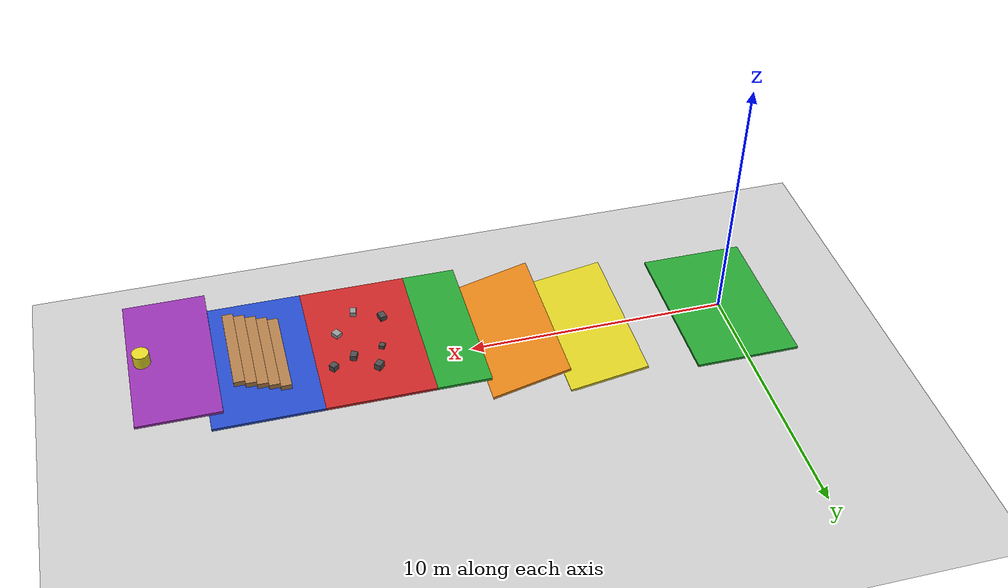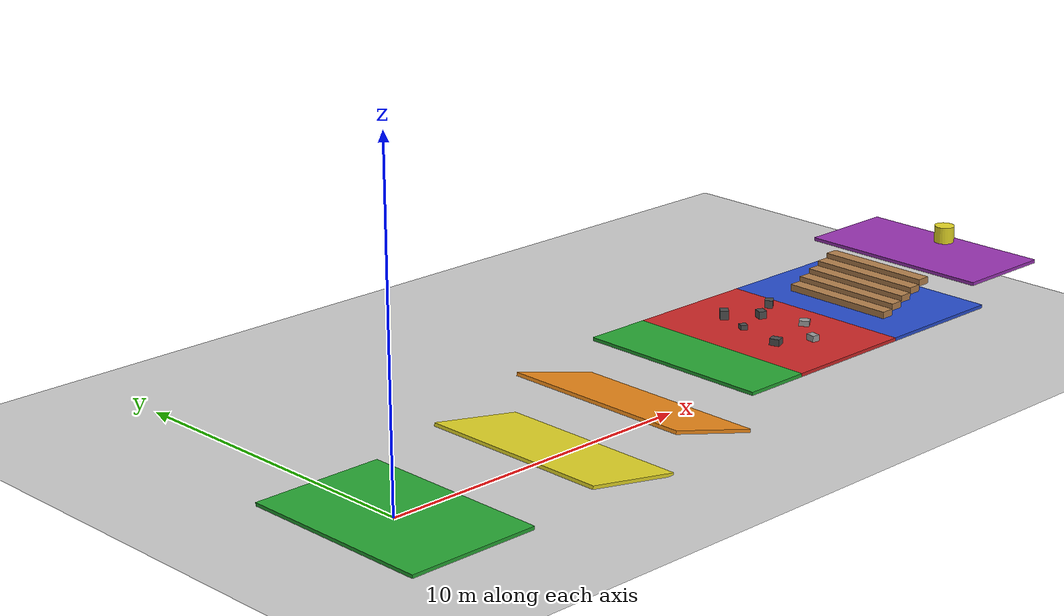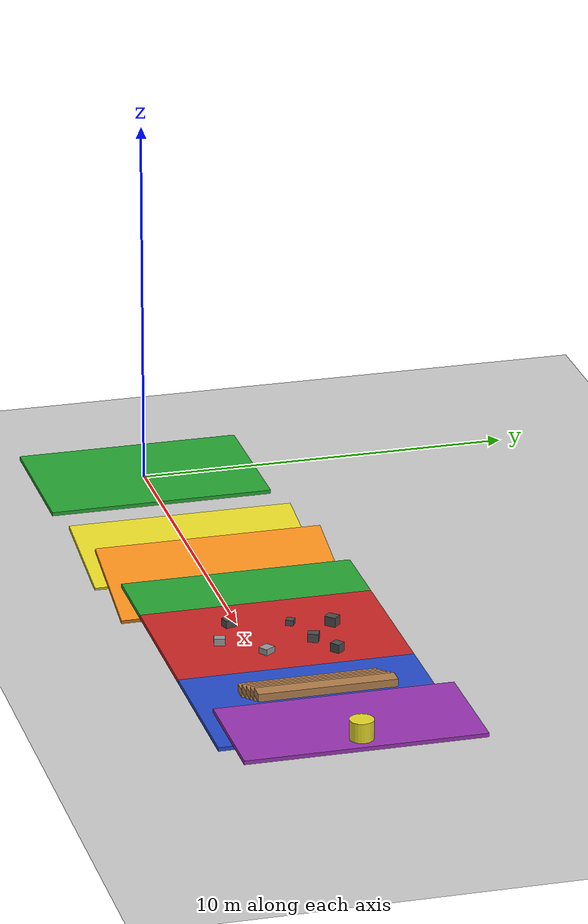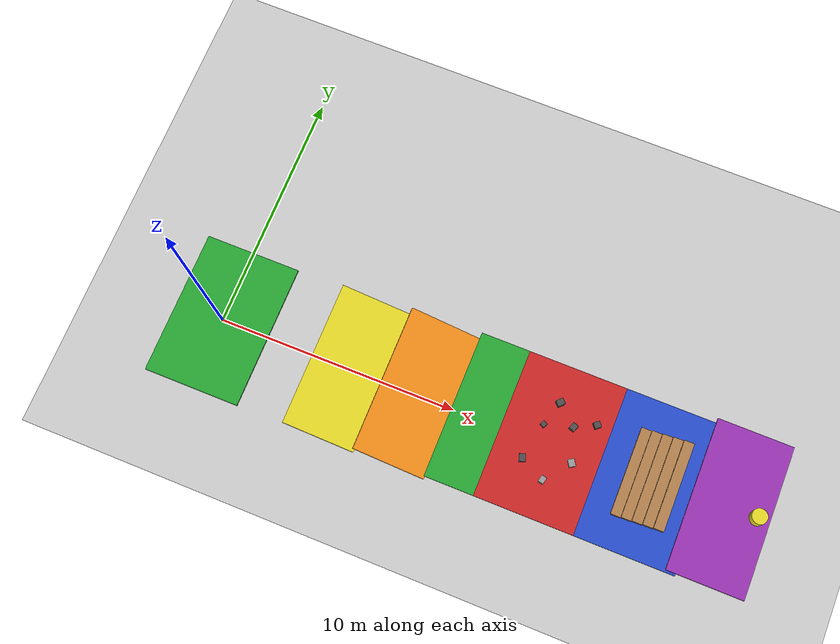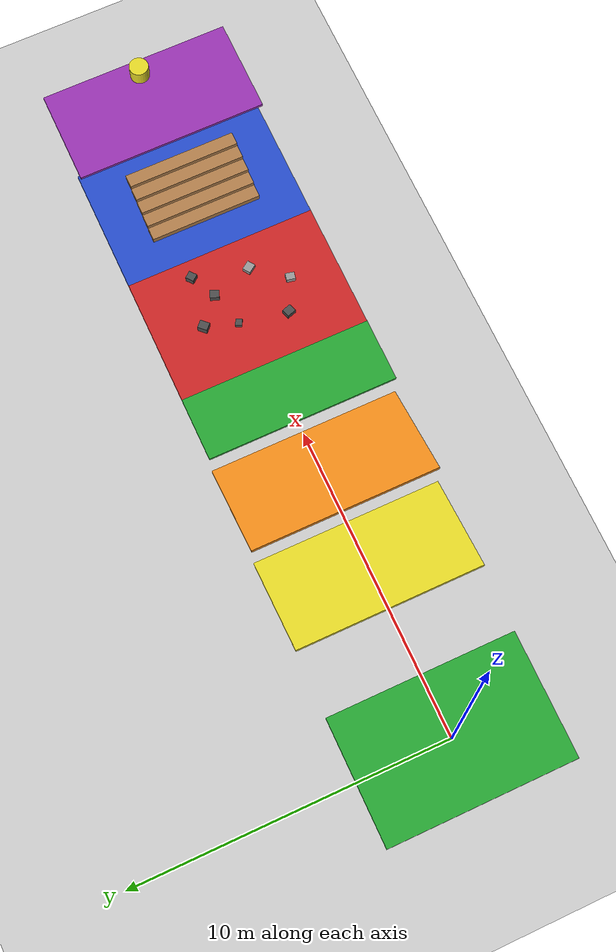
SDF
<?xml version="1.0"?>
<sdf version="1.6">
  <world name="comprehensive_terrain_world">

    <!-- Physics settings for realistic simulation -->
    <physics type="ode">
      <max_step_size>0.001</max_step_size>
      <real_time_factor>1.0</real_time_factor>
      <real_time_update_rate>1000</real_time_update_rate>
      <gravity>0 0 -9.81</gravity>
      <ode>
        <solver>
          <type>quick</type>
          <iters>50</iters>
          <sor>1.3</sor>
        </solver>
        <constraints>
          <cfm>0.0</cfm>
          <erp>0.2</erp>
          <contact_max_correcting_vel>100.0</contact_max_correcting_vel>
          <contact_surface_layer>0.001</contact_surface_layer>
        </constraints>
      </ode>
    </physics>

    <!-- Scene settings -->
    <scene>
      <ambient>0.5 0.5 0.5 1.0</ambient>
      <background>0.5 0.7 0.9 1.0</background>
      <shadows>true</shadows>
    </scene>

    <!-- Sun -->
    <include>
      <uri>model://sun</uri>
    </include>

    <!-- Additional lighting for better visibility -->
    <light name='user_point_light_0' type='point'>
      <pose>5 5 10 0 0 0</pose>
      <diffuse>0.8 0.8 0.8 1</diffuse>
      <specular>0.2 0.2 0.2 1</specular>
      <attenuation>
        <range>50</range>
        <constant>0.5</constant>
        <linear>0.01</linear>
        <quadratic>0.001</quadratic>
      </attenuation>
      <cast_shadows>false</cast_shadows>
    </light>

    <!-- Ground plane (base) -->
    <model name="ground_plane">
      <static>true</static>
      <link name="link">
        <collision name="collision">
          <geometry>
            <plane>
              <normal>0 0 1</normal>
              <size>100 100</size>
            </plane>
          </geometry>
          <surface>
            <friction>
              <ode>
                <mu>0.8</mu>
                <mu2>0.8</mu2>
              </ode>
            </friction>
          </surface>
        </collision>
        <visual name="visual">
          <geometry>
            <plane>
              <normal>0 0 1</normal>
              <size>100 100</size>
            </plane>
          </geometry>
          <material>
            <script>
              <uri>file://media/materials/scripts/gazebo.material</uri>
              <name>Gazebo/Grey</name>
            </script>
          </material>
        </visual>
      </link>
    </model>

    <!-- ==================== SECTION 1: FLAT TERRAIN (Starting Zone) ==================== -->
    <model name="flat_start_platform">
      <static>true</static>
      <pose>0 0 0.05 0 0 0</pose>
      <link name="link">
        <collision name="collision">
          <geometry>
            <box>
              <size>4 6 0.1</size>
            </box>
          </geometry>
          <surface>
            <friction>
              <ode>
                <mu>1.0</mu>
                <mu2>1.0</mu2>
              </ode>
            </friction>
          </surface>
        </collision>
        <visual name="visual">
          <geometry>
            <box>
              <size>4 6 0.1</size>
            </box>
          </geometry>
          <material>
            <script>
              <uri>file://media/materials/scripts/gazebo.material</uri>
              <name>Gazebo/Green</name>
            </script>
          </material>
        </visual>
      </link>
    </model>

    <!-- ==================== SECTION 2: GENTLE SLOPE (5-10 degrees) ==================== -->
    <model name="gentle_slope">
      <static>true</static>
      <pose>5.5 0 0.25 0 0.175 0</pose> <!-- 10 degree slope -->
      <link name="link">
        <collision name="collision">
          <geometry>
            <box>
              <size>3 6 0.1</size>
            </box>
          </geometry>
          <surface>
            <friction>
              <ode>
                <mu>1.0</mu>
                <mu2>1.0</mu2>
              </ode>
            </friction>
          </surface>
        </collision>
        <visual name="visual">
          <geometry>
            <box>
              <size>3 6 0.1</size>
            </box>
          </geometry>
          <material>
            <script>
              <uri>file://media/materials/scripts/gazebo.material</uri>
              <name>Gazebo/DarkYellow</name>
            </script>
          </material>
        </visual>
      </link>
    </model>

    <!-- ==================== SECTION 3: MODERATE SLOPE (15 degrees) ==================== -->
    <model name="moderate_slope">
      <static>true</static>
      <pose>8.5 0 0.75 0 0.262 0</pose> <!-- 15 degree slope -->
      <link name="link">
        <collision name="collision">
          <geometry>
            <box>
              <size>3 6 0.1</size>
            </box>
          </geometry>
          <surface>
            <friction>
              <ode>
                <mu>1.0</mu>
                <mu2>1.0</mu2>
              </ode>
            </friction>
          </surface>
        </collision>
        <visual name="visual">
          <geometry>
            <box>
              <size>3 6 0.1</size>
            </box>
          </geometry>
          <material>
            <script>
              <uri>file://media/materials/scripts/gazebo.material</uri>
              <name>Gazebo/Orange</name>
            </script>
          </material>
        </visual>
      </link>
    </model>

    <!-- Transition platform after slopes -->
    <model name="platform_after_slopes">
      <static>true</static>
      <pose>11 0 1.4 0 0 0</pose>
      <link name="link">
        <collision name="collision">
          <geometry>
            <box>
              <size>2 6 0.1</size>
            </box>
          </geometry>
          <surface>
            <friction>
              <ode>
                <mu>1.0</mu>
                <mu2>1.0</mu2>
              </ode>
            </friction>
          </surface>
        </collision>
        <visual name="visual">
          <geometry>
            <box>
              <size>2 6 0.1</size>
            </box>
          </geometry>
          <material>
            <script>
              <uri>file://media/materials/scripts/gazebo.material</uri>
              <name>Gazebo/Green</name>
            </script>
          </material>
        </visual>
      </link>
    </model>

    <!-- ==================== SECTION 4: RUBBLE TERRAIN (Uneven surfaces) ==================== -->
    <model name="rubble_base">
      <static>true</static>
      <pose>14 0 1.4 0 0 0</pose>
      <link name="link">
        <collision name="collision">
          <geometry>
            <box>
              <size>4 6 0.1</size>
            </box>
          </geometry>
          <surface>
            <friction>
              <ode>
                <mu>0.9</mu>
                <mu2>0.9</mu2>
              </ode>
            </friction>
          </surface>
        </collision>
        <visual name="visual">
          <geometry>
            <box>
              <size>4 6 0.1</size>
            </box>
          </geometry>
          <material>
            <script>
              <uri>file://media/materials/scripts/gazebo.material</uri>
              <name>Gazebo/Red</name>
            </script>
          </material>
        </visual>
      </link>
    </model>

    <!-- Rubble obstacles - varied sizes and positions -->
    <model name="rubble_rock_1">
      <static>true</static>
      <pose>13.2 -1.0 1.55 0 0 0.3</pose>
      <link name="link">
        <collision name="collision">
          <geometry>
            <box>
              <size>0.25 0.3 0.2</size>
            </box>
          </geometry>
        </collision>
        <visual name="visual">
          <geometry>
            <box>
              <size>0.25 0.3 0.2</size>
            </box>
          </geometry>
          <material>
            <script>
              <uri>file://media/materials/scripts/gazebo.material</uri>
              <name>Gazebo/DarkGrey</name>
            </script>
          </material>
        </visual>
      </link>
    </model>

    <model name="rubble_rock_2">
      <static>true</static>
      <pose>13.5 0.5 1.52 0 0 -0.5</pose>
      <link name="link">
        <collision name="collision">
          <geometry>
            <box>
              <size>0.2 0.2 0.15</size>
            </box>
          </geometry>
        </collision>
        <visual name="visual">
          <geometry>
            <box>
              <size>0.2 0.2 0.15</size>
            </box>
          </geometry>
          <material>
            <script>
              <uri>file://media/materials/scripts/gazebo.material</uri>
              <name>Gazebo/DarkGrey</name>
            </script>
          </material>
        </visual>
      </link>
    </model>

    <model name="rubble_rock_3">
      <static>true</static>
      <pose>13.8 1.5 1.58 0 0 0.8</pose>
      <link name="link">
        <collision name="collision">
          <geometry>
            <box>
              <size>0.3 0.25 0.25</size>
            </box>
          </geometry>
        </collision>
        <visual name="visual">
          <geometry>
            <box>
              <size>0.3 0.25 0.25</size>
            </box>
          </geometry>
          <material>
            <script>
              <uri>file://media/materials/scripts/gazebo.material</uri>
              <name>Gazebo/DarkGrey</name>
            </script>
          </material>
        </visual>
      </link>
    </model>

    <model name="rubble_rock_4">
      <static>true</static>
      <pose>14.2 -1.5 1.54 0 0 -0.2</pose>
      <link name="link">
        <collision name="collision">
          <geometry>
            <box>
              <size>0.22 0.28 0.18</size>
            </box>
          </geometry>
        </collision>
        <visual name="visual">
          <geometry>
            <box>
              <size>0.22 0.28 0.18</size>
            </box>
          </geometry>
          <material>
            <script>
              <uri>file://media/materials/scripts/gazebo.material</uri>
              <name>Gazebo/Grey</name>
            </script>
          </material>
        </visual>
      </link>
    </model>

    <model name="rubble_rock_5">
      <static>true</static>
      <pose>14.6 0.8 1.56 0 0 1.2</pose>
      <link name="link">
        <collision name="collision">
          <geometry>
            <box>
              <size>0.28 0.24 0.22</size>
            </box>
          </geometry>
        </collision>
        <visual name="visual">
          <geometry>
            <box>
              <size>0.28 0.24 0.22</size>
            </box>
          </geometry>
          <material>
            <script>
              <uri>file://media/materials/scripts/gazebo.material</uri>
              <name>Gazebo/DarkGrey</name>
            </script>
          </material>
        </visual>
      </link>
    </model>

    <model name="rubble_rock_6">
      <static>true</static>
      <pose>15.0 -0.5 1.53 0 0 0.6</pose>
      <link name="link">
        <collision name="collision">
          <geometry>
            <box>
              <size>0.26 0.3 0.16</size>
            </box>
          </geometry>
        </collision>
        <visual name="visual">
          <geometry>
            <box>
              <size>0.26 0.3 0.16</size>
            </box>
          </geometry>
          <material>
            <script>
              <uri>file://media/materials/scripts/gazebo.material</uri>
              <name>Gazebo/Grey</name>
            </script>
          </material>
        </visual>
      </link>
    </model>

    <model name="rubble_rock_7">
      <static>true</static>
      <pose>15.4 1.2 1.59 0 0 -0.9</pose>
      <link name="link">
        <collision name="collision">
          <geometry>
            <box>
              <size>0.24 0.26 0.23</size>
            </box>
          </geometry>
        </collision>
        <visual name="visual">
          <geometry>
            <box>
              <size>0.24 0.26 0.23</size>
            </box>
          </geometry>
          <material>
            <script>
              <uri>file://media/materials/scripts/gazebo.material</uri>
              <name>Gazebo/DarkGrey</name>
            </script>
          </material>
        </visual>
      </link>
    </model>

    <!-- ==================== SECTION 5: STAIRS (Step climbing) ==================== -->
    <model name="stairs_base">
      <static>true</static>
      <pose>18 0 1.4 0 0 0</pose>
      <link name="link">
        <collision name="collision">
          <geometry>
            <box>
              <size>4 6 0.1</size>
            </box>
          </geometry>
          <surface>
            <friction>
              <ode>
                <mu>1.2</mu>
                <mu2>1.2</mu2>
              </ode>
            </friction>
          </surface>
        </collision>
        <visual name="visual">
          <geometry>
            <box>
              <size>4 6 0.1</size>
            </box>
          </geometry>
          <material>
            <script>
              <uri>file://media/materials/scripts/gazebo.material</uri>
              <name>Gazebo/Blue</name>
            </script>
          </material>
        </visual>
      </link>
    </model>

    <!-- Stair steps -->
    <model name="stair_step_1">
      <static>true</static>
      <pose>17.2 0 1.55 0 0 0</pose>
      <link name="link">
        <collision name="collision">
          <geometry>
            <box>
              <size>0.4 3.5 0.2</size>
            </box>
          </geometry>
          <surface>
            <friction>
              <ode>
                <mu>1.2</mu>
                <mu2>1.2</mu2>
              </ode>
            </friction>
          </surface>
        </collision>
        <visual name="visual">
          <geometry>
            <box>
              <size>0.4 3.5 0.2</size>
            </box>
          </geometry>
          <material>
            <script>
              <uri>file://media/materials/scripts/gazebo.material</uri>
              <name>Gazebo/Wood</name>
            </script>
          </material>
        </visual>
      </link>
    </model>

    <model name="stair_step_2">
      <static>true</static>
      <pose>17.6 0 1.7 0 0 0</pose>
      <link name="link">
        <collision name="collision">
          <geometry>
            <box>
              <size>0.4 3.5 0.2</size>
            </box>
          </geometry>
          <surface>
            <friction>
              <ode>
                <mu>1.2</mu>
                <mu2>1.2</mu2>
              </ode>
            </friction>
          </surface>
        </collision>
        <visual name="visual">
          <geometry>
            <box>
              <size>0.4 3.5 0.2</size>
            </box>
          </geometry>
          <material>
            <script>
              <uri>file://media/materials/scripts/gazebo.material</uri>
              <name>Gazebo/Wood</name>
            </script>
          </material>
        </visual>
      </link>
    </model>

    <model name="stair_step_3">
      <static>true</static>
      <pose>18.0 0 1.85 0 0 0</pose>
      <link name="link">
        <collision name="collision">
          <geometry>
            <box>
              <size>0.4 3.5 0.2</size>
            </box>
          </geometry>
          <surface>
            <friction>
              <ode>
                <mu>1.2</mu>
                <mu2>1.2</mu2>
              </ode>
            </friction>
          </surface>
        </collision>
        <visual name="visual">
          <geometry>
            <box>
              <size>0.4 3.5 0.2</size>
            </box>
          </geometry>
          <material>
            <script>
              <uri>file://media/materials/scripts/gazebo.material</uri>
              <name>Gazebo/Wood</name>
            </script>
          </material>
        </visual>
      </link>
    </model>

    <model name="stair_step_4">
      <static>true</static>
      <pose>18.4 0 2.0 0 0 0</pose>
      <link name="link">
        <collision name="collision">
          <geometry>
            <box>
              <size>0.4 3.5 0.2</size>
            </box>
          </geometry>
          <surface>
            <friction>
              <ode>
                <mu>1.2</mu>
                <mu2>1.2</mu2>
              </ode>
            </friction>
          </surface>
        </collision>
        <visual name="visual">
          <geometry>
            <box>
              <size>0.4 3.5 0.2</size>
            </box>
          </geometry>
          <material>
            <script>
              <uri>file://media/materials/scripts/gazebo.material</uri>
              <name>Gazebo/Wood</name>
            </script>
          </material>
        </visual>
      </link>
    </model>

    <model name="stair_step_5">
      <static>true</static>
      <pose>18.8 0 2.15 0 0 0</pose>
      <link name="link">
        <collision name="collision">
          <geometry>
            <box>
              <size>0.4 3.5 0.2</size>
            </box>
          </geometry>
          <surface>
            <friction>
              <ode>
                <mu>1.2</mu>
                <mu2>1.2</mu2>
              </ode>
            </friction>
          </surface>
        </collision>
        <visual name="visual">
          <geometry>
            <box>
              <size>0.4 3.5 0.2</size>
            </box>
          </geometry>
          <material>
            <script>
              <uri>file://media/materials/scripts/gazebo.material</uri>
              <name>Gazebo/Wood</name>
            </script>
          </material>
        </visual>
      </link>
    </model>

    <!-- ==================== SECTION 6: FINAL PLATFORM ==================== -->
    <model name="final_platform">
      <static>true</static>
      <pose>21 0 2.2 0 0 0</pose>
      <link name="link">
        <collision name="collision">
          <geometry>
            <box>
              <size>3 6 0.1</size>
            </box>
          </geometry>
          <surface>
            <friction>
              <ode>
                <mu>1.0</mu>
                <mu2>1.0</mu2>
              </ode>
            </friction>
          </surface>
        </collision>
        <visual name="visual">
          <geometry>
            <box>
              <size>3 6 0.1</size>
            </box>
          </geometry>
          <material>
            <script>
              <uri>file://media/materials/scripts/gazebo.material</uri>
              <name>Gazebo/Purple</name>
            </script>
          </material>
        </visual>
      </link>
    </model>

    <!-- Goal marker -->
    <model name="goal_marker">
      <static>true</static>
      <pose>22 0 2.5 0 0 0</pose>
      <link name="link">
        <visual name="visual">
          <geometry>
            <cylinder>
              <radius>0.3</radius>
              <length>0.5</length>
            </cylinder>
          </geometry>
          <material>
            <script>
              <uri>file://media/materials/scripts/gazebo.material</uri>
              <name>Gazebo/Yellow</name>
            </script>
          </material>
        </visual>
      </link>
    </model>

    <!-- GUI camera pose -->
    <gui fullscreen='0'>
      <camera name='user_camera'>
        <pose>-5 -8 5 0 0.3 0.8</pose>
        <view_controller>orbit</view_controller>
      </camera>
    </gui>

  </world>
</sdf>
